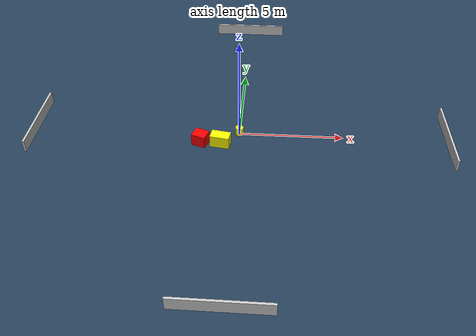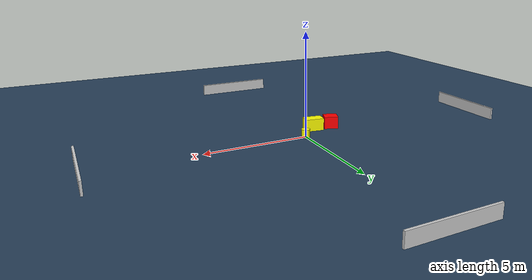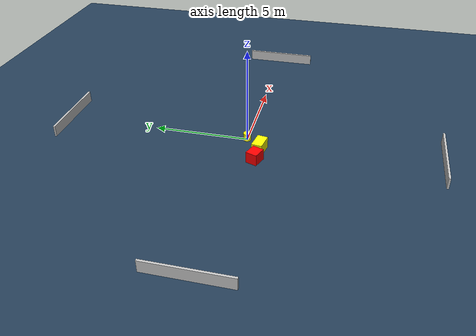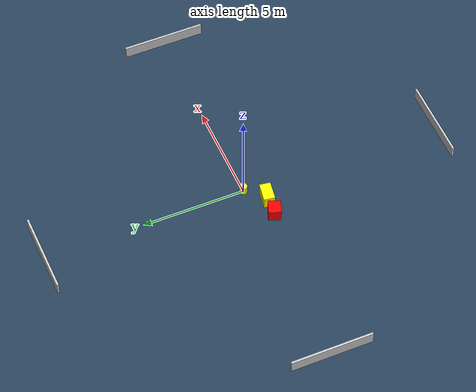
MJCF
<?xml version="1.0" ?>
<mujoco model="generated_environment">
  <option timestep="0.01" integrator="RK4" cone="elliptic"/>
  <default>
    <geom density="1"/>
  </default>
  <asset>
    <texture builtin="gradient" height="3072" name="skybox" rgb1="0.3 0.5 0.7" rgb2="0 0 0" type="skybox" width="512"/>
    <texture builtin="checker" height="300" name="groundplane" rgb1="0.2 0.3 0.4" rgb2="0.1 0.2 0.3" type="2d" width="300"/>
    <material name="groundplane" reflectance="0.2" texrepeat="5 5" texture="groundplane"/>
  </asset>
  <worldbody>
    <light dir="0 0 -1" directional="true" pos="0 0 1.5"/>
    <geom condim="3" friction="0.5 0.005 0.001" material="groundplane" name="floor" pos="0 0 0" size="0 0 0.05" type="plane"/>
    <body name="walls">
      <geom name="wall_1" condim="4" pos="-10.0 0.0 0.3" rgba="0.800000011920929 0.800000011920929 0.800000011920929 1.0" size="0.05 2.0 0.3" type="box"/>
      <geom name="wall_2" condim="4" pos="10.0 0.0 0.3" rgba="0.800000011920929 0.800000011920929 0.800000011920929 1.0" size="0.05 2.0 0.3" type="box"/>
      <geom name="wall_3" condim="4" pos="0.0 -10.0 0.3" rgba="0.800000011920929 0.800000011920929 0.800000011920929 1.0" size="2.0 0.05 0.3" type="box"/>
      <geom name="wall_4" condim="4" pos="0.0 10.0 0.3" rgba="0.800000011920929 0.800000011920929 0.800000011920929 1.0" size="2.0 0.05 0.3" type="box"/>
    </body>
    <body name="robot">
      <joint name="joint_x" type="slide" pos="0 0 0" axis="1 0 0"/>
      <joint name="joint_y" type="slide" pos="0 0 0" axis="0 1 0"/>
      <geom name="robot" type="cylinder" pos="0.0 0.0 0.2" size="0.2 0.2 0.0" mass="5.0" friction="1.0 0.005 0.0001" condim="4" rgba="1.0 1.0 0.0 1.0"/>
    </body>
    <body name="obstacle_1_movable">
      <geom name="obstacle_1_movable" condim="4" pos="-0.8565935883301099 -0.8524503537976753 0.3" euler="0 0 170.9155937165572" friction="0.0 0.005 0.001" rgba="1.0 1.0 0.0 1.0" size="0.4621273271860178 0.27312124395464155 0.3" type="box" mass="0.1"/>
      <joint type="free"/>
    </body>
    <body name="obstacle_2_static">
      <geom name="obstacle_2_static" condim="4" pos="-1.8128197021664314 -0.8043593652896093 0.3" euler="0 0 159.81196100294014" friction="0.0 0.005 0.001" rgba="1.0 0.0 0.0 1.0" size="0.34529123633797215 0.30040747891363156 0.3" type="box"/>
    </body>
  </worldbody>
  <actuator>
    <motor name="actuator_x" joint="joint_x" gear="1" ctrlrange="-1 1"/>
    <motor name="actuator_y" joint="joint_y" gear="1" ctrlrange="-1 1"/>
  </actuator>
</mujoco>
